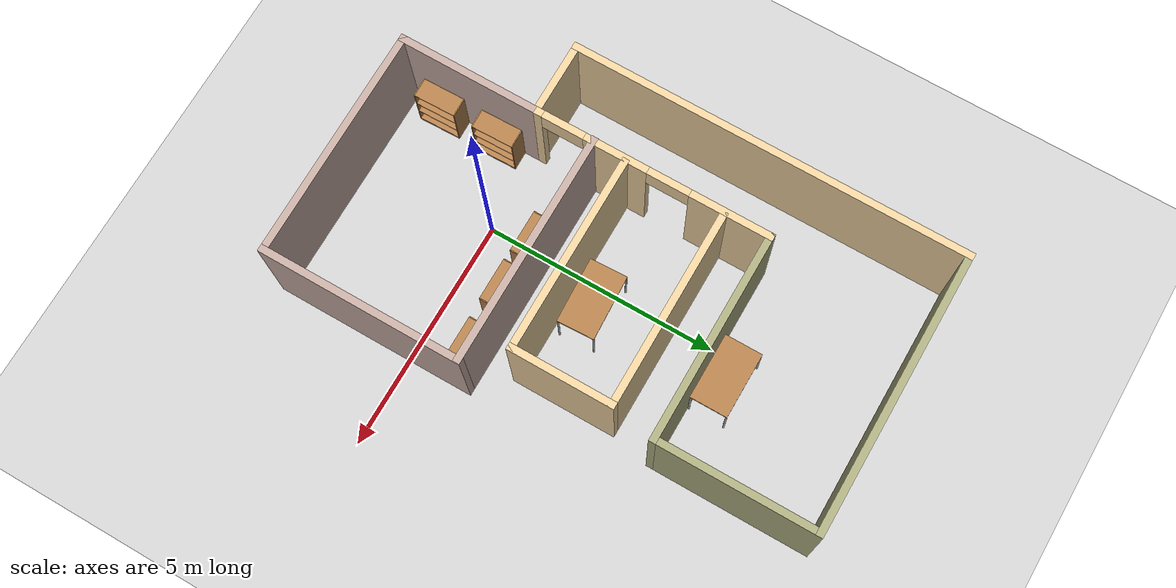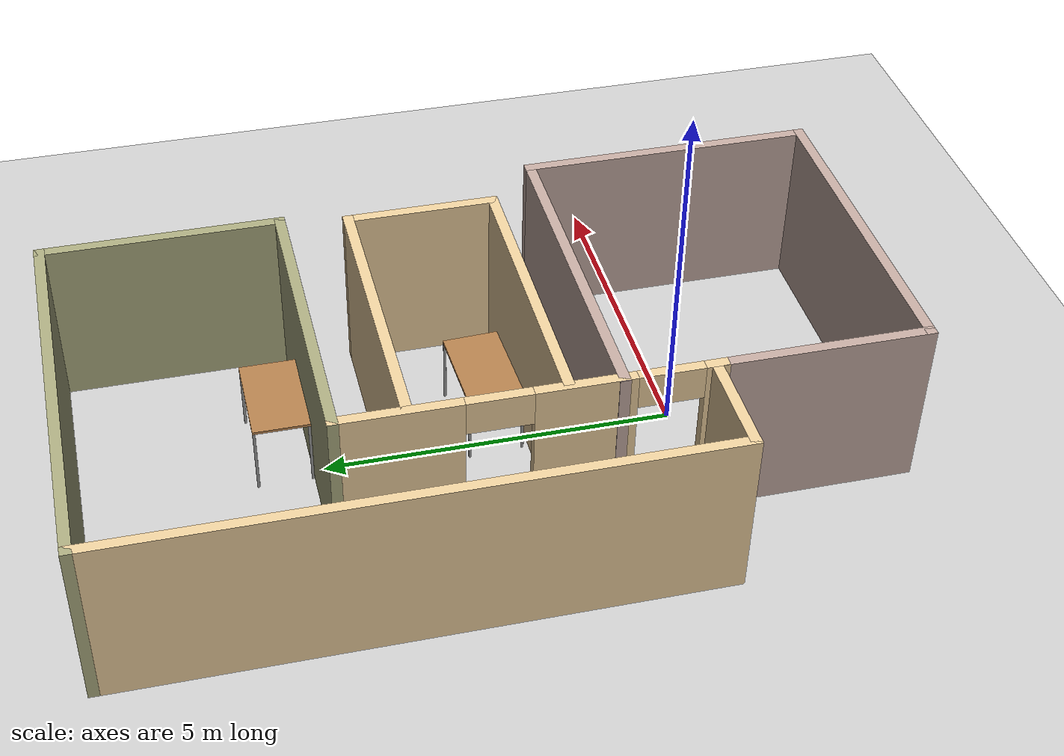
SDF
<sdf version="1.6">
 <world name="default">
  <light name="sun" type="directional">
   <pose>0 0 10 0 -0 0</pose>
   <diffuse>0.8 0.8 0.8 1</diffuse>
   <specular>0.1 0.1 0.1 1</specular>
   <attenuation>
    <range>1000</range>
    <constant>0.9</constant>
    <linear>0.01</linear>
    <quadratic>0.001</quadratic>
   </attenuation>
   <direction>-0.5 0.5 -1</direction>
  </light>
  <model name="ground_plane">
   <static>1</static>
   <link name="link">
    <collision name="collision">
     <geometry><plane><normal>0 0 1</normal><size>100 100</size></plane></geometry>
     <surface><friction><ode><mu>100</mu><mu2>50</mu2></ode></friction></surface>
    </collision>
    <visual name="visual">
     <cast_shadows>0</cast_shadows>
     <geometry><plane><normal>0 0 1</normal><size>100 100</size></plane></geometry>
     <material>
      <script><uri>file://media/materials/scripts/gazebo.material</uri><name>Gazebo/Grey</name></script>
     </material>
    </visual>
   </link>
  </model>
  <gravity>0 0 -9.8</gravity>
  <magnetic_field>6e-06 2.3e-05 -4.2e-05</magnetic_field>
  <atmosphere type="adiabatic"/>
  <physics name="default_physics" default="0" type="ode">
   <max_step_size>0.001</max_step_size>
   <real_time_factor>1</real_time_factor>
   <real_time_update_rate>1000</real_time_update_rate>
  </physics>
  <scene><ambient>0.4 0.4 0.4 1</ambient><background>0.7 0.7 0.7 1</background><shadows>1</shadows></scene>
  <spherical_coordinates>
   <surface_model>EARTH_WGS84</surface_model>
   <latitude_deg>0</latitude_deg>
   <longitude_deg>0</longitude_deg>
   <elevation>0</elevation>
   <heading_deg>0</heading_deg>
  </spherical_coordinates>
  <model name="fz_house1">
   <pose>-0.13847 2.78318 0 0 -0 0</pose>
   <link name="Wall_0">
    <collision name="Wall_0_Collision">
     <geometry><box><size>6 0.15 2.5</size></box></geometry>
     <pose>0 0 1.25 0 -0 0</pose>
    </collision>
    <visual name="Wall_0_Visual">
     <pose>0 0 1.25 0 -0 0</pose>
     <geometry><box><size>6 0.15 2.5</size></box></geometry>
     <material>
      <script><uri>file://media/materials/scripts/gazebo.material</uri><name>Gazebo/Grey</name></script>
      <ambient>0.666667 0.666667 0.498039 1</ambient>
     </material>
    </visual>
    <pose>-0.25 5.65001 0 0 -0 3.14159</pose>
   </link>
   <link name="Wall_1">
    <collision name="Wall_1_Collision">
     <geometry><box><size>8.5 0.15 2.5</size></box></geometry>
     <pose>0 0 1.25 0 -0 0</pose>
    </collision>
    <visual name="Wall_1_Visual">
     <pose>0 0 1.25 0 -0 0</pose>
     <geometry><box><size>8.5 0.15 2.5</size></box></geometry>
     <material>
      <script><uri>file://media/materials/scripts/gazebo.material</uri><name>Gazebo/Grey</name></script>
      <ambient>0.921569 0.807843 0.615686 1</ambient>
     </material>
    </visual>
    <pose>-3.175 1.47501 0 0 0 -1.5708</pose>
   </link>
   <link name="Wall_11">
    <collision name="Wall_11_Collision">
     <geometry><box><size>3 0.15 2.5</size></box></geometry>
     <pose>0 0 1.25 0 -0 0</pose>
    </collision>
    <visual name="Wall_11_Visual">
     <pose>0 0 1.25 0 -0 0</pose>
     <geometry><box><size>3 0.15 2.5</size></box></geometry>
     <material>
      <script><uri>file://media/materials/scripts/gazebo.material</uri><name>Gazebo/Grey</name></script>
      <ambient>0.760784 0.662745 0.627451 1</ambient>
     </material>
    </visual>
    <pose>-1.675 -4.22499 0 0 0 -1.5708</pose>
   </link>
   <link name="Wall_12">
    <collision name="Wall_12_Collision">
     <geometry><box><size>5 0.15 2.5</size></box></geometry>
     <pose>0 0 1.25 0 -0 0</pose>
    </collision>
    <visual name="Wall_12_Visual">
     <pose>0 0 1.25 0 -0 0</pose>
     <geometry><box><size>5 0.15 2.5</size></box></geometry>
     <material>
      <script><uri>file://media/materials/scripts/gazebo.material</uri><name>Gazebo/Grey</name></script>
      <ambient>0.760784 0.662745 0.627451 1</ambient>
     </material>
    </visual>
    <pose>0.75 -5.64999 0 0 -0 0</pose>
   </link>
   <link name="Wall_13">
    <collision name="Wall_13_Collision">
     <geometry><box><size>4.33005 0.15 2.5</size></box></geometry>
     <pose>0 0 1.25 0 -0 0</pose>
    </collision>
    <visual name="Wall_13_Visual">
     <pose>0 0 1.25 0 -0 0</pose>
     <geometry><box><size>4.33005 0.15 2.5</size></box></geometry>
     <material>
      <script><uri>file://media/materials/scripts/gazebo.material</uri><name>Gazebo/Grey</name></script>
      <ambient>0.760784 0.662745 0.627451 1</ambient>
     </material>
    </visual>
    <pose>3.175 -3.55999 0 0 -0 1.5708</pose>
   </link>
   <link name="Wall_14">
    <collision name="Wall_14_Collision">
     <geometry><box><size>5 0.15 2.5</size></box></geometry>
     <pose>0 0 1.25 0 -0 0</pose>
    </collision>
    <visual name="Wall_14_Visual">
     <pose>0 0 1.25 0 -0 0</pose>
     <geometry><box><size>5 0.15 2.5</size></box></geometry>
     <material>
      <script><uri>file://media/materials/scripts/gazebo.material</uri><name>Gazebo/Grey</name></script>
      <ambient>0.760784 0.662745 0.627451 1</ambient>
     </material>
    </visual>
    <pose>0.74 -1.46999 0 0 -0 3.14159</pose>
   </link>
   <link name="Wall_16">
    <collision name="Wall_16_Collision">
     <geometry><box><size>4.25 0.15 2.5</size></box></geometry>
     <pose>0 0 1.25 0 -0 0</pose>
    </collision>
    <visual name="Wall_16_Visual">
     <pose>0 0 1.25 0 -0 0</pose>
     <geometry><box><size>4.25 0.15 2.5</size></box></geometry>
     <material>
      <script><uri>file://media/materials/scripts/gazebo.material</uri><name>Gazebo/Grey</name></script>
      <ambient>0.921569 0.807843 0.615686 1</ambient>
     </material>
    </visual>
    <pose>0.451735 1.34894 0 0 -0 0</pose>
   </link>
   <link name="Wall_17">
    <collision name="Wall_17_Collision">
     <geometry><box><size>2.25 0.15 2.5</size></box></geometry>
     <pose>0 0 1.25 0 -0 0</pose>
    </collision>
    <visual name="Wall_17_Visual">
     <pose>0 0 1.25 0 -0 0</pose>
     <geometry><box><size>2.25 0.15 2.5</size></box></geometry>
     <material>
      <script><uri>file://media/materials/scripts/gazebo.material</uri><name>Gazebo/Grey</name></script>
      <ambient>0.921569 0.807843 0.615686 1</ambient>
     </material>
    </visual>
    <pose>2.50174 0.29894 0 0 0 -1.5708</pose>
   </link>
   <link name="Wall_18">
    <collision name="Wall_18_Collision">
     <geometry><box><size>4.25 0.15 2.5</size></box></geometry>
     <pose>0 0 1.25 0 -0 0</pose>
    </collision>
    <visual name="Wall_18_Visual">
     <pose>0 0 1.25 0 -0 0</pose>
     <geometry><box><size>4.25 0.15 2.5</size></box></geometry>
     <material>
      <script><uri>file://media/materials/scripts/gazebo.material</uri><name>Gazebo/Grey</name></script>
      <ambient>0.921569 0.807843 0.615686 1</ambient>
     </material>
    </visual>
    <pose>0.451735 -0.751061 0 0 -0 3.14159</pose>
   </link>
   <link name="Wall_2">
    <collision name="Wall_2_Collision">
     <geometry><box><size>1.5 0.15 2.5</size></box></geometry>
     <pose>0 0 1.25 0 -0 0</pose>
    </collision>
    <visual name="Wall_2_Visual">
     <pose>0 0 1.25 0 -0 0</pose>
     <geometry><box><size>1.5 0.15 2.5</size></box></geometry>
     <material>
      <script><uri>file://media/materials/scripts/gazebo.material</uri><name>Gazebo/Grey</name></script>
      <ambient>0.921569 0.807843 0.615686 1</ambient>
     </material>
    </visual>
    <pose>-2.5 -2.69999 0 0 -0 0</pose>
   </link>
   <link name="Wall_5">
    <collision name="Wall_5_Collision">
     <geometry><box><size>3.5 0.15 2.5</size></box></geometry>
     <pose>0 0 1.25 0 -0 0</pose>
    </collision>
    <visual name="Wall_5_Visual">
     <pose>0 0 1.25 0 -0 0</pose>
     <geometry><box><size>3.5 0.15 2.5</size></box></geometry>
     <material>
      <script><uri>file://media/materials/scripts/gazebo.material</uri><name>Gazebo/Grey</name></script>
      <ambient>0.666667 0.666667 0.498039 1</ambient>
     </material>
    </visual>
    <pose>2.675 3.97501 0 0 0 -1.5708</pose>
   </link>
   <link name="Wall_6">
    <collision name="Wall_6_Collision">
     <geometry><box><size>4.5 0.15 2.5</size></box></geometry>
     <pose>0 0 1.25 0 -0 0</pose>
    </collision>
    <visual name="Wall_6_Visual">
     <pose>0 0 1.25 0 -0 0</pose>
     <geometry><box><size>4.5 0.15 2.5</size></box></geometry>
     <material>
      <script><uri>file://media/materials/scripts/gazebo.material</uri><name>Gazebo/Grey</name></script>
      <ambient>0.666667 0.666667 0.498039 1</ambient>
     </material>
    </visual>
    <pose>0.5 2.30001 0 0 -0 3.14159</pose>
   </link>
   <link name="Wall_9">
    <pose>-1.675 -0.249988 0 0 0 -1.5708</pose>
    <visual name="Wall_9_Visual_0">
     <pose>-1.74382 0 1.25 0 -0 0</pose>
     <geometry><box><size>1.76235 0.15 2.5</size></box></geometry>
     <material>
      <script><uri>file://media/materials/scripts/gazebo.material</uri><name>Gazebo/Grey</name></script>
      <ambient>0.921569 0.807843 0.615686 1</ambient>
     </material>
    </visual>
    <collision name="Wall_9_Collision_0">
     <geometry><box><size>1.76235 0.15 2.5</size></box></geometry>
     <pose>-1.74382 0 1.25 0 -0 0</pose>
    </collision>
    <visual name="Wall_9_Visual_1">
     <pose>0.720407 0 1.25 0 -0 0</pose>
     <geometry><box><size>1.3661 0.15 2.5</size></box></geometry>
     <material>
      <script><uri>file://media/materials/scripts/gazebo.material</uri><name>Gazebo/Grey</name></script>
      <ambient>0.921569 0.807843 0.615686 1</ambient>
     </material>
    </visual>
    <collision name="Wall_9_Collision_1">
     <geometry><box><size>1.3661 0.15 2.5</size></box></geometry>
     <pose>0.720407 0 1.25 0 -0 0</pose>
    </collision>
    <visual name="Wall_9_Visual_2">
     <pose>2.46423 0 1.25 0 -0 0</pose>
     <geometry><box><size>0.321541 0.15 2.5</size></box></geometry>
     <material>
      <script><uri>file://media/materials/scripts/gazebo.material</uri><name>Gazebo/Grey</name></script>
      <ambient>0.921569 0.807843 0.615686 1</ambient>
     </material>
    </visual>
    <collision name="Wall_9_Collision_2">
     <geometry><box><size>0.321541 0.15 2.5</size></box></geometry>
     <pose>2.46423 0 1.25 0 -0 0</pose>
    </collision>
    <visual name="Wall_9_Visual_3">
     <pose>-0.412645 0 2.25 0 -0 0</pose>
     <geometry><box><size>0.9 0.15 0.5</size></box></geometry>
     <material>
      <script><uri>file://media/materials/scripts/gazebo.material</uri><name>Gazebo/Grey</name></script>
      <ambient>0.921569 0.807843 0.615686 1</ambient>
     </material>
    </visual>
    <collision name="Wall_9_Collision_3">
     <geometry><box><size>0.9 0.15 0.5</size></box></geometry>
     <pose>-0.412645 0 2.25 0 -0 0</pose>
    </collision>
    <visual name="Wall_9_Visual_4">
     <pose>1.85346 0 2.25 0 -0 0</pose>
     <geometry><box><size>0.9 0.15 0.5</size></box></geometry>
     <material>
      <script><uri>file://media/materials/scripts/gazebo.material</uri><name>Gazebo/Grey</name></script>
      <ambient>0.921569 0.807843 0.615686 1</ambient>
     </material>
    </visual>
    <collision name="Wall_9_Collision_4">
     <geometry><box><size>0.9 0.15 0.5</size></box></geometry>
     <pose>1.85346 0 2.25 0 -0 0</pose>
    </collision>
   </link>
   <static>1</static>
  </model>
  <model name="table">
   <static>0</static>
   <link name="link">
    <collision name="surface">
     <pose>0 0 1 0 -0 0</pose>
     <geometry><box><size>1.5 0.8 0.03</size></box></geometry>
     <surface><friction><ode><mu>0.6</mu><mu2>0.6</mu2></ode></friction></surface>
    </collision>
    <visual name="visual1">
     <pose>0 0 1 0 -0 0</pose>
     <geometry><box><size>1.4 0.8 0.04</size></box></geometry>
     <material>
      <script><uri>file://media/materials/scripts/gazebo.material</uri><name>Gazebo/Wood</name></script>
     </material>
    </visual>
    <collision name="front_left_leg">
     <pose>0.68 0.38 0.5 0 -0 0</pose>
     <geometry><cylinder><radius>0.02</radius><length>1</length></cylinder></geometry>
    </collision>
    <visual name="front_left_leg">
     <pose>0.68 0.38 0.5 0 -0 0</pose>
     <geometry><cylinder><radius>0.02</radius><length>1</length></cylinder></geometry>
     <material>
      <script><uri>file://media/materials/scripts/gazebo.material</uri><name>Gazebo/Grey</name></script>
     </material>
    </visual>
    <collision name="front_right_leg">
     <pose>0.68 -0.38 0.5 0 -0 0</pose>
     <geometry><cylinder><radius>0.02</radius><length>1</length></cylinder></geometry>
    </collision>
    <visual name="front_right_leg">
     <pose>0.68 -0.38 0.5 0 -0 0</pose>
     <geometry><cylinder><radius>0.02</radius><length>1</length></cylinder></geometry>
     <material>
      <script><uri>file://media/materials/scripts/gazebo.material</uri><name>Gazebo/Grey</name></script>
     </material>
    </visual>
    <collision name="back_right_leg">
     <pose>-0.68 -0.38 0.5 0 -0 0</pose>
     <geometry><cylinder><radius>0.02</radius><length>1</length></cylinder></geometry>
    </collision>
    <visual name="back_right_leg">
     <pose>-0.68 -0.38 0.5 0 -0 0</pose>
     <geometry><cylinder><radius>0.02</radius><length>1</length></cylinder></geometry>
     <material>
      <script><uri>file://media/materials/scripts/gazebo.material</uri><name>Gazebo/Grey</name></script>
     </material>
    </visual>
    <collision name="back_left_leg">
     <pose>-0.68 0.38 0.5 0 -0 0</pose>
     <geometry><cylinder><radius>0.02</radius><length>1</length></cylinder></geometry>
    </collision>
    <visual name="back_left_leg">
     <pose>-0.68 0.38 0.5 0 -0 0</pose>
     <geometry><cylinder><radius>0.02</radius><length>1</length></cylinder></geometry>
     <material>
      <script><uri>file://media/materials/scripts/gazebo.material</uri><name>Gazebo/Grey</name></script>
     </material>
    </visual>
    <inertial>
     <inertia><ixx>1</ixx><ixy>0</ixy><ixz>0</ixz><iyy>1</iyy><iyz>0</iyz><izz>1</izz></inertia>
     <mass>1</mass>
    </inertial>
   </link>
   <pose>0.493053 2.60977 -0.002527 2.9e-05 -0.000221 0.044869</pose>
  </model>
  <model name="table_0">
   <static>0</static>
   <link name="link">
    <collision name="surface">
     <pose>0 0 1 0 -0 0</pose>
     <geometry><box><size>1.5 0.8 0.03</size></box></geometry>
     <surface><friction><ode><mu>0.6</mu><mu2>0.6</mu2></ode></friction></surface>
    </collision>
    <visual name="visual1">
     <pose>0 0 1 0 -0 0</pose>
     <geometry><box><size>1.4 0.8 0.04</size></box></geometry>
     <material>
      <script><uri>file://media/materials/scripts/gazebo.material</uri><name>Gazebo/Wood</name></script>
     </material>
    </visual>
    <collision name="front_left_leg">
     <pose>0.68 0.38 0.5 0 -0 0</pose>
     <geometry><cylinder><radius>0.02</radius><length>1</length></cylinder></geometry>
    </collision>
    <visual name="front_left_leg">
     <pose>0.68 0.38 0.5 0 -0 0</pose>
     <geometry><cylinder><radius>0.02</radius><length>1</length></cylinder></geometry>
     <material>
      <script><uri>file://media/materials/scripts/gazebo.material</uri><name>Gazebo/Grey</name></script>
     </material>
    </visual>
    <collision name="front_right_leg">
     <pose>0.68 -0.38 0.5 0 -0 0</pose>
     <geometry><cylinder><radius>0.02</radius><length>1</length></cylinder></geometry>
    </collision>
    <visual name="front_right_leg">
     <pose>0.68 -0.38 0.5 0 -0 0</pose>
     <geometry><cylinder><radius>0.02</radius><length>1</length></cylinder></geometry>
     <material>
      <script><uri>file://media/materials/scripts/gazebo.material</uri><name>Gazebo/Grey</name></script>
     </material>
    </visual>
    <collision name="back_right_leg">
     <pose>-0.68 -0.38 0.5 0 -0 0</pose>
     <geometry><cylinder><radius>0.02</radius><length>1</length></cylinder></geometry>
    </collision>
    <visual name="back_right_leg">
     <pose>-0.68 -0.38 0.5 0 -0 0</pose>
     <geometry><cylinder><radius>0.02</radius><length>1</length></cylinder></geometry>
     <material>
      <script><uri>file://media/materials/scripts/gazebo.material</uri><name>Gazebo/Grey</name></script>
     </material>
    </visual>
    <collision name="back_left_leg">
     <pose>-0.68 0.38 0.5 0 -0 0</pose>
     <geometry><cylinder><radius>0.02</radius><length>1</length></cylinder></geometry>
    </collision>
    <visual name="back_left_leg">
     <pose>-0.68 0.38 0.5 0 -0 0</pose>
     <geometry><cylinder><radius>0.02</radius><length>1</length></cylinder></geometry>
     <material>
      <script><uri>file://media/materials/scripts/gazebo.material</uri><name>Gazebo/Grey</name></script>
     </material>
    </visual>
    <inertial>
     <inertia><ixx>1</ixx><ixy>0</ixy><ixz>0</ixz><iyy>1</iyy><iyz>0</iyz><izz>1</izz></inertia>
     <mass>1</mass>
    </inertial>
   </link>
   <pose>0.539404 5.55819 -5e-06 -1e-06 -3e-06 -7e-06</pose>
  </model>
  <model name="bookshelf">
   <static>1</static>
   <link name="link">
    <inertial><mass>1</mass></inertial>
    <collision name="back">
     <pose>0 0.005 0.6 0 -0 0</pose>
     <geometry><box><size>0.9 0.01 1.2</size></box></geometry>
    </collision>
    <visual name="visual1">
     <pose>0 0.005 0.6 0 -0 0</pose>
     <geometry><box><size>0.9 0.01 1.2</size></box></geometry>
     <material>
      <script><uri>file://media/materials/scripts/gazebo.material</uri><name>Gazebo/Wood</name></script>
     </material>
    </visual>
    <collision name="left_side">
     <pose>0.45 -0.195 0.6 0 -0 0</pose>
     <geometry><box><size>0.02 0.4 1.2</size></box></geometry>
    </collision>
    <visual name="visual2">
     <pose>0.45 -0.195 0.6 0 -0 0</pose>
     <geometry><box><size>0.02 0.4 1.2</size></box></geometry>
     <material>
      <script><uri>file://media/materials/scripts/gazebo.material</uri><name>Gazebo/Wood</name></script>
     </material>
    </visual>
    <collision name="right_side">
     <pose>-0.45 -0.195 0.6 0 -0 0</pose>
     <geometry><box><size>0.02 0.4 1.2</size></box></geometry>
    </collision>
    <visual name="visual3">
     <pose>-0.45 -0.195 0.6 0 -0 0</pose>
     <geometry><box><size>0.02 0.4 1.2</size></box></geometry>
     <material>
      <script><uri>file://media/materials/scripts/gazebo.material</uri><name>Gazebo/Wood</name></script>
     </material>
    </visual>
    <collision name="bottom">
     <pose>0 -0.195 0.03 0 -0 0</pose>
     <geometry><box><size>0.88 0.4 0.06</size></box></geometry>
    </collision>
    <visual name="visual4">
     <pose>0 -0.195 0.03 0 -0 0</pose>
     <geometry><box><size>0.88 0.4 0.06</size></box></geometry>
     <material>
      <script><uri>file://media/materials/scripts/gazebo.material</uri><name>Gazebo/Wood</name></script>
     </material>
    </visual>
    <collision name="top">
     <pose>0 -0.195 1.19 0 -0 0</pose>
     <geometry><box><size>0.88 0.4 0.02</size></box></geometry>
    </collision>
    <visual name="visual5">
     <pose>0 -0.195 1.19 0 -0 0</pose>
     <geometry><box><size>0.88 0.4 0.02</size></box></geometry>
     <material>
      <script><uri>file://media/materials/scripts/gazebo.material</uri><name>Gazebo/Wood</name></script>
     </material>
    </visual>
    <collision name="low_shelf">
     <pose>0 -0.195 0.43 0 -0 0</pose>
     <geometry><box><size>0.88 0.4 0.02</size></box></geometry>
    </collision>
    <visual name="visual6">
     <pose>0 -0.195 0.43 0 -0 0</pose>
     <geometry><box><size>0.88 0.4 0.02</size></box></geometry>
     <material>
      <script><uri>file://media/materials/scripts/gazebo.material</uri><name>Gazebo/Wood</name></script>
     </material>
    </visual>
    <collision name="high_shelf">
     <pose>0 -0.195 0.8 0 -0 0</pose>
     <geometry><box><size>0.88 0.4 0.02</size></box></geometry>
    </collision>
    <visual name="visual7">
     <pose>0 -0.195 0.8 0 -0 0</pose>
     <geometry><box><size>0.88 0.4 0.02</size></box></geometry>
     <material>
      <script><uri>file://media/materials/scripts/gazebo.material</uri><name>Gazebo/Wood</name></script>
     </material>
    </visual>
   </link>
   <pose>0.028764 1.18151 0 0 -0 0</pose>
  </model>
  <model name="bookshelf_0">
   <static>1</static>
   <link name="link">
    <inertial><mass>1</mass></inertial>
    <collision name="back">
     <pose>0 0.005 0.6 0 -0 0</pose>
     <geometry><box><size>0.9 0.01 1.2</size></box></geometry>
    </collision>
    <visual name="visual1">
     <pose>0 0.005 0.6 0 -0 0</pose>
     <geometry><box><size>0.9 0.01 1.2</size></box></geometry>
     <material>
      <script><uri>file://media/materials/scripts/gazebo.material</uri><name>Gazebo/Wood</name></script>
     </material>
    </visual>
    <collision name="left_side">
     <pose>0.45 -0.195 0.6 0 -0 0</pose>
     <geometry><box><size>0.02 0.4 1.2</size></box></geometry>
    </collision>
    <visual name="visual2">
     <pose>0.45 -0.195 0.6 0 -0 0</pose>
     <geometry><box><size>0.02 0.4 1.2</size></box></geometry>
     <material>
      <script><uri>file://media/materials/scripts/gazebo.material</uri><name>Gazebo/Wood</name></script>
     </material>
    </visual>
    <collision name="right_side">
     <pose>-0.45 -0.195 0.6 0 -0 0</pose>
     <geometry><box><size>0.02 0.4 1.2</size></box></geometry>
    </collision>
    <visual name="visual3">
     <pose>-0.45 -0.195 0.6 0 -0 0</pose>
     <geometry><box><size>0.02 0.4 1.2</size></box></geometry>
     <material>
      <script><uri>file://media/materials/scripts/gazebo.material</uri><name>Gazebo/Wood</name></script>
     </material>
    </visual>
    <collision name="bottom">
     <pose>0 -0.195 0.03 0 -0 0</pose>
     <geometry><box><size>0.88 0.4 0.06</size></box></geometry>
    </collision>
    <visual name="visual4">
     <pose>0 -0.195 0.03 0 -0 0</pose>
     <geometry><box><size>0.88 0.4 0.06</size></box></geometry>
     <material>
      <script><uri>file://media/materials/scripts/gazebo.material</uri><name>Gazebo/Wood</name></script>
     </material>
    </visual>
    <collision name="top">
     <pose>0 -0.195 1.19 0 -0 0</pose>
     <geometry><box><size>0.88 0.4 0.02</size></box></geometry>
    </collision>
    <visual name="visual5">
     <pose>0 -0.195 1.19 0 -0 0</pose>
     <geometry><box><size>0.88 0.4 0.02</size></box></geometry>
     <material>
      <script><uri>file://media/materials/scripts/gazebo.material</uri><name>Gazebo/Wood</name></script>
     </material>
    </visual>
    <collision name="low_shelf">
     <pose>0 -0.195 0.43 0 -0 0</pose>
     <geometry><box><size>0.88 0.4 0.02</size></box></geometry>
    </collision>
    <visual name="visual6">
     <pose>0 -0.195 0.43 0 -0 0</pose>
     <geometry><box><size>0.88 0.4 0.02</size></box></geometry>
     <material>
      <script><uri>file://media/materials/scripts/gazebo.material</uri><name>Gazebo/Wood</name></script>
     </material>
    </visual>
    <collision name="high_shelf">
     <pose>0 -0.195 0.8 0 -0 0</pose>
     <geometry><box><size>0.88 0.4 0.02</size></box></geometry>
    </collision>
    <visual name="visual7">
     <pose>0 -0.195 0.8 0 -0 0</pose>
     <geometry><box><size>0.88 0.4 0.02</size></box></geometry>
     <material>
      <script><uri>file://media/materials/scripts/gazebo.material</uri><name>Gazebo/Wood</name></script>
     </material>
    </visual>
   </link>
   <pose>1.14374 1.16938 0 0 -0 0</pose>
  </model>
  <model name="bookshelf_1">
   <static>1</static>
   <link name="link">
    <inertial><mass>1</mass></inertial>
    <collision name="back">
     <pose>0 0.005 0.6 0 -0 0</pose>
     <geometry><box><size>0.9 0.01 1.2</size></box></geometry>
    </collision>
    <visual name="visual1">
     <pose>0 0.005 0.6 0 -0 0</pose>
     <geometry><box><size>0.9 0.01 1.2</size></box></geometry>
     <material>
      <script><uri>file://media/materials/scripts/gazebo.material</uri><name>Gazebo/Wood</name></script>
     </material>
    </visual>
    <collision name="left_side">
     <pose>0.45 -0.195 0.6 0 -0 0</pose>
     <geometry><box><size>0.02 0.4 1.2</size></box></geometry>
    </collision>
    <visual name="visual2">
     <pose>0.45 -0.195 0.6 0 -0 0</pose>
     <geometry><box><size>0.02 0.4 1.2</size></box></geometry>
     <material>
      <script><uri>file://media/materials/scripts/gazebo.material</uri><name>Gazebo/Wood</name></script>
     </material>
    </visual>
    <collision name="right_side">
     <pose>-0.45 -0.195 0.6 0 -0 0</pose>
     <geometry><box><size>0.02 0.4 1.2</size></box></geometry>
    </collision>
    <visual name="visual3">
     <pose>-0.45 -0.195 0.6 0 -0 0</pose>
     <geometry><box><size>0.02 0.4 1.2</size></box></geometry>
     <material>
      <script><uri>file://media/materials/scripts/gazebo.material</uri><name>Gazebo/Wood</name></script>
     </material>
    </visual>
    <collision name="bottom">
     <pose>0 -0.195 0.03 0 -0 0</pose>
     <geometry><box><size>0.88 0.4 0.06</size></box></geometry>
    </collision>
    <visual name="visual4">
     <pose>0 -0.195 0.03 0 -0 0</pose>
     <geometry><box><size>0.88 0.4 0.06</size></box></geometry>
     <material>
      <script><uri>file://media/materials/scripts/gazebo.material</uri><name>Gazebo/Wood</name></script>
     </material>
    </visual>
    <collision name="top">
     <pose>0 -0.195 1.19 0 -0 0</pose>
     <geometry><box><size>0.88 0.4 0.02</size></box></geometry>
    </collision>
    <visual name="visual5">
     <pose>0 -0.195 1.19 0 -0 0</pose>
     <geometry><box><size>0.88 0.4 0.02</size></box></geometry>
     <material>
      <script><uri>file://media/materials/scripts/gazebo.material</uri><name>Gazebo/Wood</name></script>
     </material>
    </visual>
    <collision name="low_shelf">
     <pose>0 -0.195 0.43 0 -0 0</pose>
     <geometry><box><size>0.88 0.4 0.02</size></box></geometry>
    </collision>
    <visual name="visual6">
     <pose>0 -0.195 0.43 0 -0 0</pose>
     <geometry><box><size>0.88 0.4 0.02</size></box></geometry>
     <material>
      <script><uri>file://media/materials/scripts/gazebo.material</uri><name>Gazebo/Wood</name></script>
     </material>
    </visual>
    <collision name="high_shelf">
     <pose>0 -0.195 0.8 0 -0 0</pose>
     <geometry><box><size>0.88 0.4 0.02</size></box></geometry>
    </collision>
    <visual name="visual7">
     <pose>0 -0.195 0.8 0 -0 0</pose>
     <geometry><box><size>0.88 0.4 0.02</size></box></geometry>
     <material>
      <script><uri>file://media/materials/scripts/gazebo.material</uri><name>Gazebo/Wood</name></script>
     </material>
    </visual>
   </link>
   <pose>2.44672 1.19203 0 0 -0 0</pose>
  </model>
  <model name="bookshelf_2">
   <static>1</static>
   <link name="link">
    <inertial><mass>1</mass></inertial>
    <collision name="back">
     <pose>0 0.005 0.6 0 -0 0</pose>
     <geometry><box><size>0.9 0.01 1.2</size></box></geometry>
    </collision>
    <visual name="visual1">
     <pose>0 0.005 0.6 0 -0 0</pose>
     <geometry><box><size>0.9 0.01 1.2</size></box></geometry>
     <material>
      <script><uri>file://media/materials/scripts/gazebo.material</uri><name>Gazebo/Wood</name></script>
     </material>
    </visual>
    <collision name="left_side">
     <pose>0.45 -0.195 0.6 0 -0 0</pose>
     <geometry><box><size>0.02 0.4 1.2</size></box></geometry>
    </collision>
    <visual name="visual2">
     <pose>0.45 -0.195 0.6 0 -0 0</pose>
     <geometry><box><size>0.02 0.4 1.2</size></box></geometry>
     <material>
      <script><uri>file://media/materials/scripts/gazebo.material</uri><name>Gazebo/Wood</name></script>
     </material>
    </visual>
    <collision name="right_side">
     <pose>-0.45 -0.195 0.6 0 -0 0</pose>
     <geometry><box><size>0.02 0.4 1.2</size></box></geometry>
    </collision>
    <visual name="visual3">
     <pose>-0.45 -0.195 0.6 0 -0 0</pose>
     <geometry><box><size>0.02 0.4 1.2</size></box></geometry>
     <material>
      <script><uri>file://media/materials/scripts/gazebo.material</uri><name>Gazebo/Wood</name></script>
     </material>
    </visual>
    <collision name="bottom">
     <pose>0 -0.195 0.03 0 -0 0</pose>
     <geometry><box><size>0.88 0.4 0.06</size></box></geometry>
    </collision>
    <visual name="visual4">
     <pose>0 -0.195 0.03 0 -0 0</pose>
     <geometry><box><size>0.88 0.4 0.06</size></box></geometry>
     <material>
      <script><uri>file://media/materials/scripts/gazebo.material</uri><name>Gazebo/Wood</name></script>
     </material>
    </visual>
    <collision name="top">
     <pose>0 -0.195 1.19 0 -0 0</pose>
     <geometry><box><size>0.88 0.4 0.02</size></box></geometry>
    </collision>
    <visual name="visual5">
     <pose>0 -0.195 1.19 0 -0 0</pose>
     <geometry><box><size>0.88 0.4 0.02</size></box></geometry>
     <material>
      <script><uri>file://media/materials/scripts/gazebo.material</uri><name>Gazebo/Wood</name></script>
     </material>
    </visual>
    <collision name="low_shelf">
     <pose>0 -0.195 0.43 0 -0 0</pose>
     <geometry><box><size>0.88 0.4 0.02</size></box></geometry>
    </collision>
    <visual name="visual6">
     <pose>0 -0.195 0.43 0 -0 0</pose>
     <geometry><box><size>0.88 0.4 0.02</size></box></geometry>
     <material>
      <script><uri>file://media/materials/scripts/gazebo.material</uri><name>Gazebo/Wood</name></script>
     </material>
    </visual>
    <collision name="high_shelf">
     <pose>0 -0.195 0.8 0 -0 0</pose>
     <geometry><box><size>0.88 0.4 0.02</size></box></geometry>
    </collision>
    <visual name="visual7">
     <pose>0 -0.195 0.8 0 -0 0</pose>
     <geometry><box><size>0.88 0.4 0.02</size></box></geometry>
     <material>
      <script><uri>file://media/materials/scripts/gazebo.material</uri><name>Gazebo/Wood</name></script>
     </material>
    </visual>
   </link>
   <pose>-1.72401 -2.0477 0 0 -0 1.59047</pose>
  </model>
  <model name="bookshelf_2_clone">
   <static>1</static>
   <link name="link">
    <inertial><mass>1</mass></inertial>
    <collision name="back">
     <pose>0 0.005 0.6 0 -0 0</pose>
     <geometry><box><size>0.9 0.01 1.2</size></box></geometry>
    </collision>
    <visual name="visual1">
     <pose>0 0.005 0.6 0 -0 0</pose>
     <geometry><box><size>0.9 0.01 1.2</size></box></geometry>
     <material>
      <script><uri>file://media/materials/scripts/gazebo.material</uri><name>Gazebo/Wood</name></script>
     </material>
    </visual>
    <collision name="left_side">
     <pose>0.45 -0.195 0.6 0 -0 0</pose>
     <geometry><box><size>0.02 0.4 1.2</size></box></geometry>
    </collision>
    <visual name="visual2">
     <pose>0.45 -0.195 0.6 0 -0 0</pose>
     <geometry><box><size>0.02 0.4 1.2</size></box></geometry>
     <material>
      <script><uri>file://media/materials/scripts/gazebo.material</uri><name>Gazebo/Wood</name></script>
     </material>
    </visual>
    <collision name="right_side">
     <pose>-0.45 -0.195 0.6 0 -0 0</pose>
     <geometry><box><size>0.02 0.4 1.2</size></box></geometry>
    </collision>
    <visual name="visual3">
     <pose>-0.45 -0.195 0.6 0 -0 0</pose>
     <geometry><box><size>0.02 0.4 1.2</size></box></geometry>
     <material>
      <script><uri>file://media/materials/scripts/gazebo.material</uri><name>Gazebo/Wood</name></script>
     </material>
    </visual>
    <collision name="bottom">
     <pose>0 -0.195 0.03 0 -0 0</pose>
     <geometry><box><size>0.88 0.4 0.06</size></box></geometry>
    </collision>
    <visual name="visual4">
     <pose>0 -0.195 0.03 0 -0 0</pose>
     <geometry><box><size>0.88 0.4 0.06</size></box></geometry>
     <material>
      <script><uri>file://media/materials/scripts/gazebo.material</uri><name>Gazebo/Wood</name></script>
     </material>
    </visual>
    <collision name="top">
     <pose>0 -0.195 1.19 0 -0 0</pose>
     <geometry><box><size>0.88 0.4 0.02</size></box></geometry>
    </collision>
    <visual name="visual5">
     <pose>0 -0.195 1.19 0 -0 0</pose>
     <geometry><box><size>0.88 0.4 0.02</size></box></geometry>
     <material>
      <script><uri>file://media/materials/scripts/gazebo.material</uri><name>Gazebo/Wood</name></script>
     </material>
    </visual>
    <collision name="low_shelf">
     <pose>0 -0.195 0.43 0 -0 0</pose>
     <geometry><box><size>0.88 0.4 0.02</size></box></geometry>
    </collision>
    <visual name="visual6">
     <pose>0 -0.195 0.43 0 -0 0</pose>
     <geometry><box><size>0.88 0.4 0.02</size></box></geometry>
     <material>
      <script><uri>file://media/materials/scripts/gazebo.material</uri><name>Gazebo/Wood</name></script>
     </material>
    </visual>
    <collision name="high_shelf">
     <pose>0 -0.195 0.8 0 -0 0</pose>
     <geometry><box><size>0.88 0.4 0.02</size></box></geometry>
    </collision>
    <visual name="visual7">
     <pose>0 -0.195 0.8 0 -0 0</pose>
     <geometry><box><size>0.88 0.4 0.02</size></box></geometry>
     <material>
      <script><uri>file://media/materials/scripts/gazebo.material</uri><name>Gazebo/Wood</name></script>
     </material>
    </visual>
   </link>
   <pose>-1.72419 -0.72467 0 0 -0 1.59047</pose>
  </model>
 </world>
</sdf>
